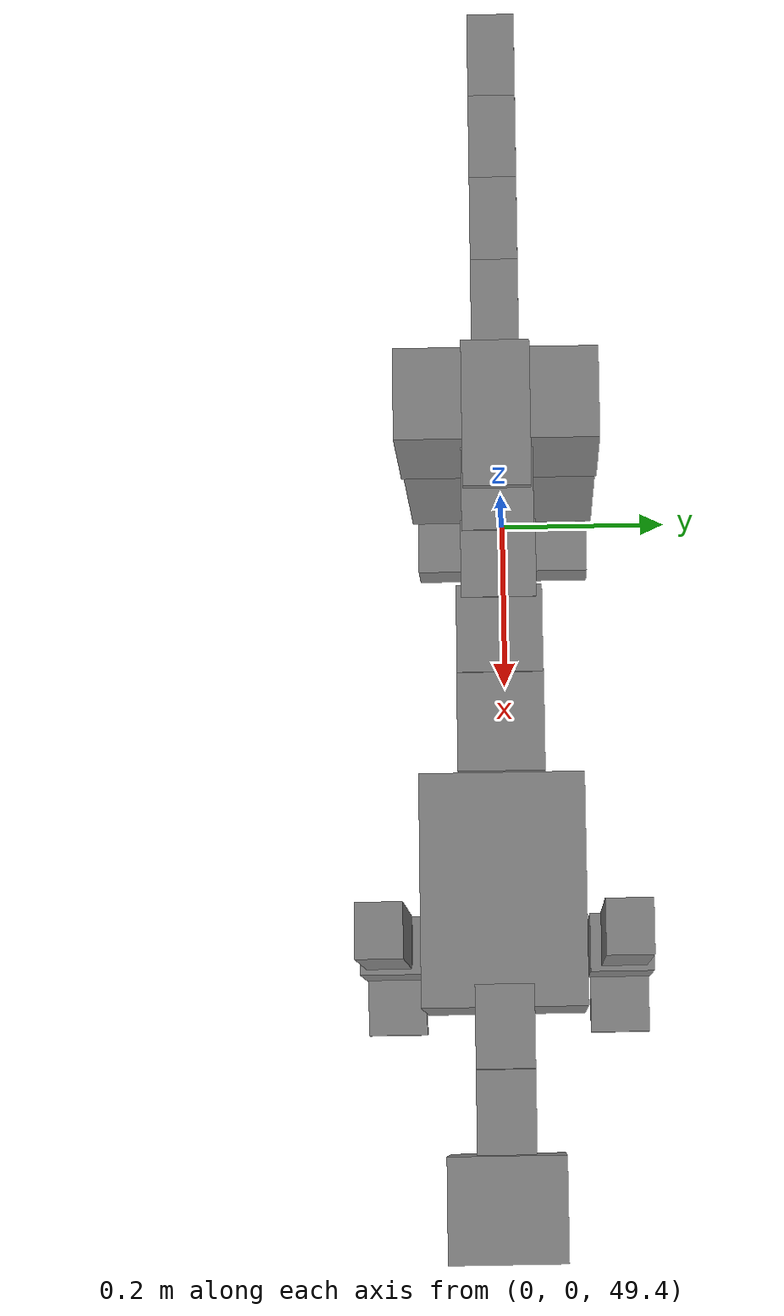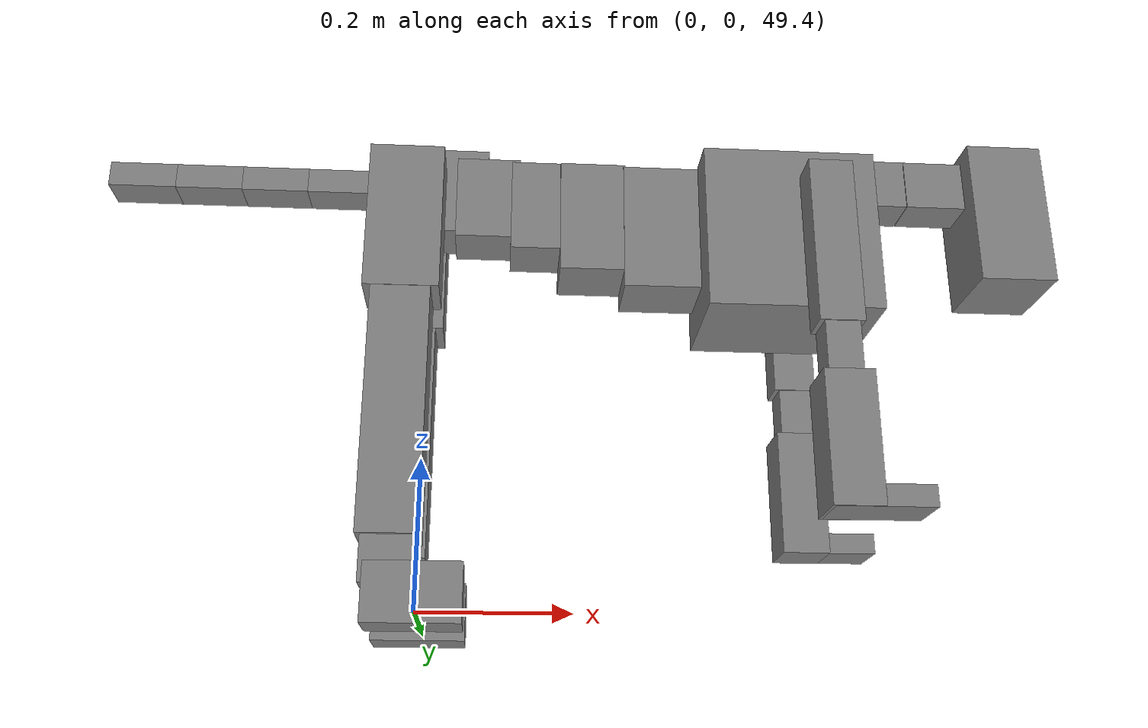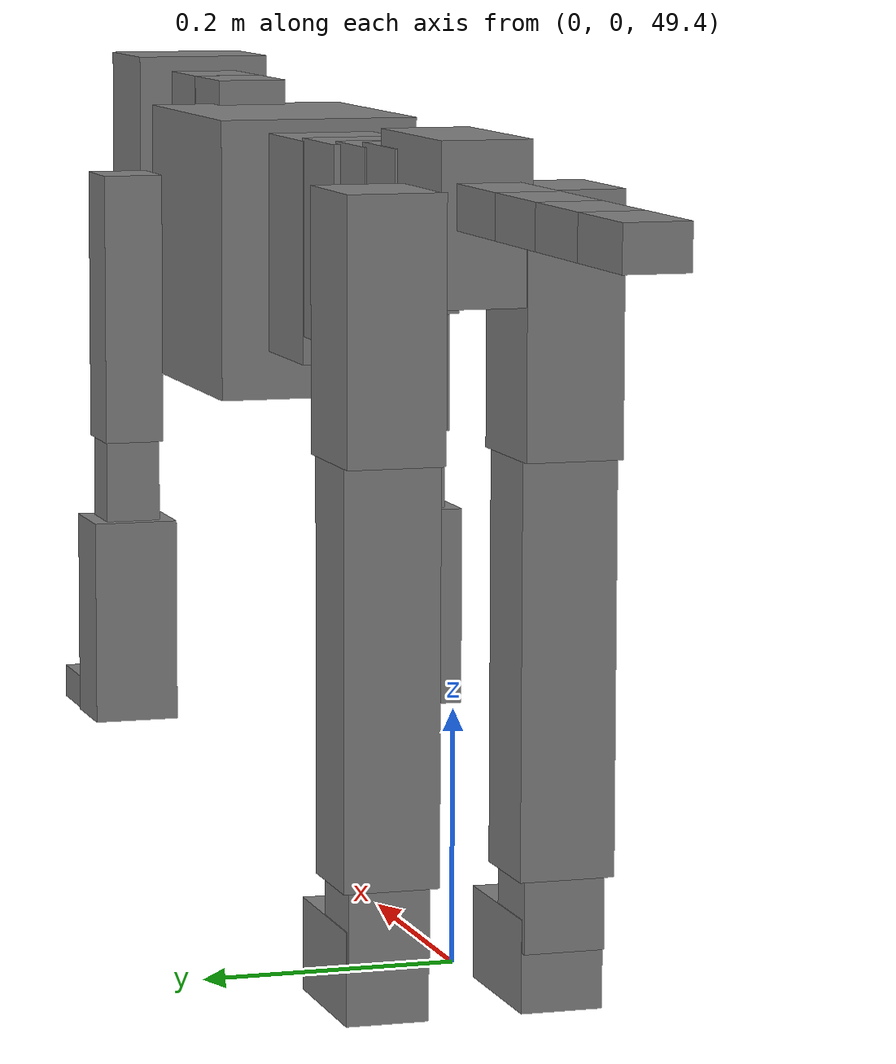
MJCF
<mujoco model="dog">

    <default>
        <joint armature="0.02" stiffness="1" damping="0.2" limited="true"/>
        <geom condim="3" friction="1 0.05 0.05" margin="0.01"/>
        <motor ctrllimited="true" ctrlrange="-1.0 1.0" forcelimited="true" gear="50"/>
    </default>

    <compiler inertiafromgeom="true" angle="radian"/>

    <option timestep="0.016" iterations="50" tolerance="1e-10" solver="Newton" jacobian="dense" cone="pyramidal"/>

    <size nconmax="20000" njmax="60000" nstack="5000000"/>
    <visual>
        <map force="0.1" zfar="30"/>
        <rgba haze="0.15 0.25 0.35 1"/>
        <quality shadowsize="2048"/>
        <global offwidth="800" offheight="800"/>
    </visual>

    <asset>
        <texture type="skybox" builtin="gradient" rgb1="0.3 0.5 0.7" rgb2="0 0 0" width="512" height="512"/>
        <texture name="texplane" type="2d" builtin="checker" rgb1=".2 .3 .4" rgb2=".1 0.15 0.2" width="512" height="512"
                 mark="cross" markrgb=".8 .8 .8"/>
        <texture name="texgeom" type="cube" builtin="flat" mark="cross" width="127" height="1278" rgb1="0.8 0.6 0.4"
                 rgb2="0.8 0.6 0.4" markrgb="1 1 1" random="0.01"/>

        <material name="matplane" reflectance="0.3" texture="texplane" texrepeat="1 1" texuniform="true"/>
        <material name="matgeom" texture="texgeom" texuniform="true" rgba="0.8 0.6 .4 1"/>
    </asset>

    <worldbody>
        <geom name="floor" pos="0 0 0" size="0 0 .25" type="plane" material="matplane" condim="3"/>

        <light directional="false" diffuse=".2 .2 .2" specular="0 0 0" pos="0 0 5" dir="0 0 -1" castshadow="false"/>
        <light mode="targetbodycom" target="torso" directional="false" diffuse=".8 .8 .8" specular="0.3 0.3 0.3"
               pos="0 0 4.0" dir="0 0 -1"/>

        <body name="root" pos="0 0 50">
            <freejoint name="root_1"/>
            <geom type="box" pos="0 0 -0.02" size="0.0774  0.0358  0.063" density="2030"/>

            <body name="spine1" pos="0.054 0 0">
                <joint name="spine1_y" axis="0 1 0" range="0 0.7" limited="true"/>
                <geom type="box" pos="0.02375 0 -0.03" size="0.04375  0.0375  0.05985" density="2030"/>

                <body name="spine2" pos="0.0612 0 0">
                    <joint name="spine2_y" axis="0 1 0" range="-0.15 0.15" limited="true"/>
                    <geom type="box" pos="0.03555  0  -0.04" size="0.04055  0.039  0.06615" density="2030"/>

                    <body name="spine3" pos="0.0730 0 0">
                        <joint name="spine3_y" axis="0 1 0" range="-0.15 0.15" limited="true"/>
                        <geom type="box" pos="0.03555  0  -0.057" size="0.04555  0.0445  0.081" density="2030"/>

                        <body name="spine4" pos="0.0780 0 0">
                            <joint name="spine4_y" axis="0 1 0" range="-0.15 0.15" limited="true"/>
                            <geom type="box" pos="0.05265  0  -0.07" size="0.05265  0.045  0.09135" density="2030"/>

                            <body name="torso" pos="0.1082 0 0">
                                <joint name="torso_y" axis="0 1 0" range="-0.15 0.15" limited="true"/>
                                <geom type="box" pos="0.11925  0  -0.085" size="0.11925  0.085  0.11745"
                                      density="2030"/>

                                <body name="neck1" pos="0.2160  0   0.0180">
                                    <joint name="neck1_y" axis="0 1 0" range="-1.2  -1" limited="true"/>
                                    <geom type="box" pos="0.0423  0  0" size="0.0423  0.03  0.036" density="2325"/>

                                    <body name="neck2" pos="0.0853  0  0">
                                        <joint name="neck2_y" axis="0 1 0" range="0.1  0" limited="true"/>
                                        <geom type="box" pos="0.0423  0  0" size="0.0423  0.03  0.036" density="2325"/>

                                        <body name="head" pos="0.0853  0  0">
                                            <joint name="head_y" axis="0 1 0" range="-0.3  -0.2" limited="true"/>
                                            <geom type="box" pos="0.0531  0  -0.055" size="0.0531  0.06  0.1044"
                                                  density="4030"/>

                                        </body>
                                    </body>
                                </body>

                                <body name="front_shoulder" pos="0.156  0   -0.0480">
                                    <joint name="front_shoulder_y" axis="0 1 0" range="-1 1.5" limited="true"/>
                                    <geom type="box" pos="0 0.13 -0.0886" size="0.0295  0.0252  0.1153" density="1158"/>
                                    <geom type="box" pos="0 -0.13 -0.0886" size="0.0295  0.0252  0.1153"
                                          density="1158"/>

                                    <body name="front_elbow" pos="0  0  -0.1772">
                                        <joint name="front_elbow_y" axis="0 1 0" range="-2 0" limited="true"/>
                                        <geom type="box" pos="0 0.13 -0.0546" size="0.0229  0.0234  0.0546"
                                              density="1081"/>
                                        <geom type="box" pos="0 -0.13 -0.0546" size="0.0229  0.0234  0.0546"
                                              density="1081"/>

                                        <body name="front_wrist" pos="0  0  -0.1092">
                                            <joint name="front_wrist_y" axis="0 1 0" range="-0.2 0" limited="true"/>
                                            <geom type="box" pos="0 0.13 -0.0740" size="0.0325  0.0361  0.0871"
                                                  density="1664"/>
                                            <geom type="box" pos="0 -0.13 -0.0740" size="0.0325  0.0361  0.0871"
                                                  density="1664"/>

                                            <body name="front_finger_end" pos="0  0  -0.1479">
                                                <joint name="front_finger_y" axis="0 1 0" range="-0.4 1"
                                                       limited="true"/>
                                                <geom type="box" pos="0.0341  0.13  0.0009"
                                                      size="0.0625  0.0341  0.0141" density="1515"/>
                                                <geom type="box" pos="0.0341  -0.13  0.0009"
                                                      size="0.0625  0.0341  0.0141" density="1515"/>

                                            </body>

                                        </body>
                                    </body>
                                </body>

                            </body>
                        </body>
                    </body>
                </body>
            </body>

            <body name="back_hip" pos="-0.03 0 -0.018">
                <joint name="back_hip_y" axis="0 1 0" range="-1.5 0.3" limited="true"/>
                <geom type="box" pos="0 0.07 -0.0796" size="0.0492  0.0386  0.1024" density="1154"/>
                <geom type="box" pos="0 -0.07 -0.0796" size="0.0492  0.0386  0.1024" density="1154"/>

                <body name="back_knee" pos="0  0  -0.1591">
                    <joint name="back_knee_y" axis="0 1 0" range="0 2.8" limited="true"/>
                    <geom type="box" pos="0 0.07 -0.1657" size="0.0385  0.0379  0.1812" density="1227"/>
                    <geom type="box" pos="0 -0.07 -0.1657" size="0.0385  0.0379  0.1812" density="1227"/>

                    <body name="back_ankle" pos="0  0  -0.3313">
                        <joint name="back_ankle_y" axis="0 1 0" range="-2.2 0" limited="true"/>
                        <geom type="box" pos="0 0.07 -0.0312" size="0.0323  0.0323  0.0424" density="1284"/>
                        <geom type="box" pos="0 -0.07 -0.0312" size="0.0323  0.0323  0.0424" density="1284"/>

                        <body name="back_toe_end" pos="0  0  -0.0623">
                            <joint name="back_toe_y" axis="0 1 0" range="-0.4 1" limited="true"/>
                            <geom type="box" pos="0.0328  0.07  -0.0220" size="0.0601  0.0328  0.0370" density="1515"/>
                            <geom type="box" pos="0.0328  -0.07  -0.0220" size="0.0601  0.0328  0.0370" density="1515"/>

                        </body>
                    </body>
                </body>
            </body>

            <body name="tail1" pos="-0.074 0 -0.006">
                <joint name="tail1_y" axis="0 1 0" range="-0.2 0.2" limited="true"/>
                <geom type="box" pos="-0.0536  0  0" size="0.045  0.025  0.0175" density="1587"/>

                <body name="tail2" pos="-0.09 0 0">
                    <joint name="tail2_y" axis="0 1 0" range="-0.2 0.2" limited="true"/>
                    <geom type="box" pos="-0.0536  0  0" size="0.045  0.025  0.0175" density="1587"/>

                    <body name="tail3" pos="-0.09 0 0">
                        <joint name="tail3_y" axis="0 1 0" range="-0.2 0.2" limited="true"/>
                        <geom type="box" pos="-0.0536  0  0" size="0.045  0.025  0.0175" density="1587"/>

                        <body name="tail4" pos="-0.09 0 0">
                            <joint name="tail4_y" axis="0 1 0" range="-0.2 0.2" limited="true"/>
                            <geom type="box" pos="-0.0536  0  0" size="0.045  0.025  0.0175" density="1587"/>

                        </body>
                    </body>
                </body>
            </body>
        </body>
    </worldbody>

    <actuator>
        <motor joint="spine1_y" forcerange="-150 150     "/>
        <motor joint="spine2_y" forcerange="-150 150     "/>
        <motor joint="spine3_y" forcerange="-150 150     "/>
        <motor joint="spine4_y" forcerange="-150 150     "/>
        <motor joint="torso_y" forcerange="-150 150     "/>
        <motor joint="neck1_y" forcerange="-100 100       "/>
        <motor joint="neck2_y" forcerange="-100 100       "/>
        <motor joint="head_y" forcerange="-150 150       "/>
        <motor joint="front_shoulder_y" forcerange="-158.24 109.96"/>
        <motor joint="front_elbow_y" forcerange="-127.40 143.11"/>
        <motor joint="front_wrist_y" forcerange="-138.97 149.58"/>
        <motor joint="front_finger_y" forcerange="-95.77 45.94"/>
        <motor joint="back_hip_y" forcerange="-391.12 323.79"/>
        <motor joint="back_knee_y" forcerange="-363.37 388.39"/>
        <motor joint="back_angle_y" forcerange="-223.46 192.73"/>
        <motor joint="back_toe_y" forcerange="-128.52 53.86"/>
        <motor joint="tail1_y" forcerange="-50 50     "/>
        <motor joint="tail2_y" forcerange="-50 50     "/>
        <motor joint="tail3_y" forcerange="-50 50     "/>
        <motor joint="tail4_y" forcerange="-50 50     "/>
    </actuator>
</mujoco>
